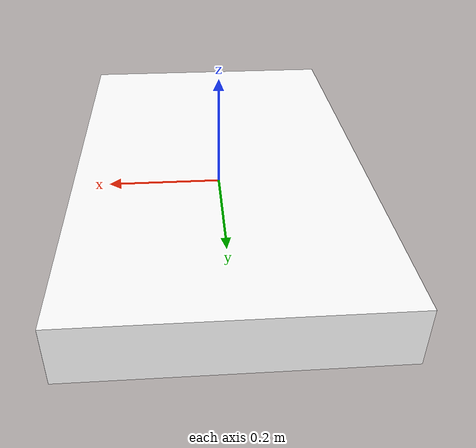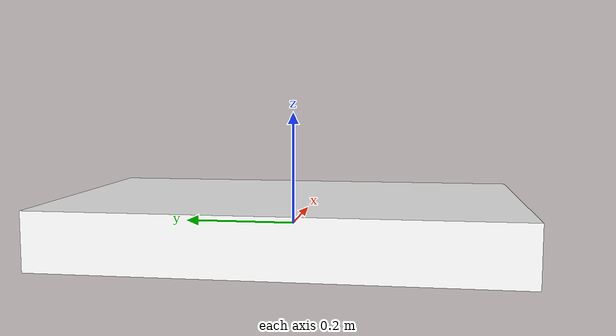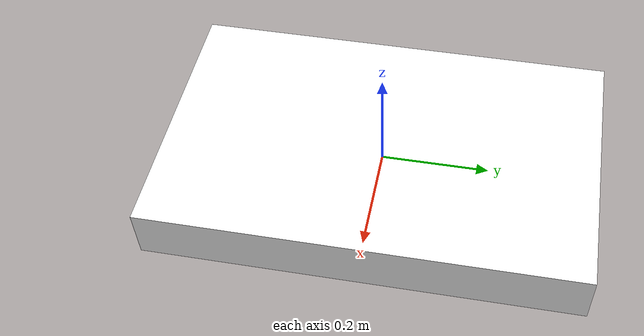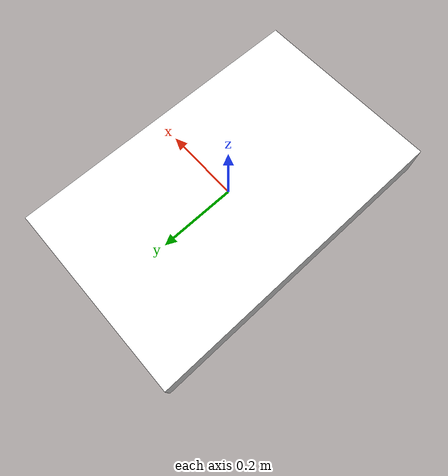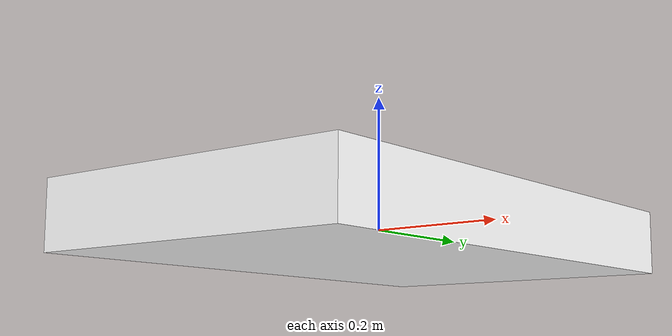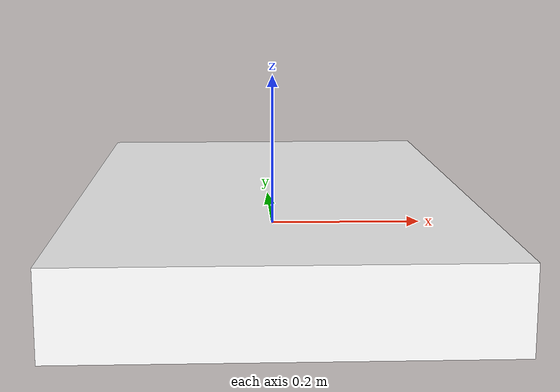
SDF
<?xml version="1.0" ?>
<sdf version="1.6">
  <model name="table_10cm">
    <static>true</static>
    <link name="link">
      <collision name="collision">
        <geometry>
          <box>
            <size>0.5 0.8 0.1</size>
          </box>
        </geometry>
      </collision>
      <visual name="visual">
        <geometry>
          <box>
            <size>0.5 0.8 0.1</size>
          </box>
        </geometry>
        <material>
          <ambient>1 1 1 1</ambient>
          <diffuse>1 1 1 1</diffuse>
          <specular>0.1 0.1 0.1 1</specular>
        </material>
      </visual>
    </link>
  </model>
</sdf>
